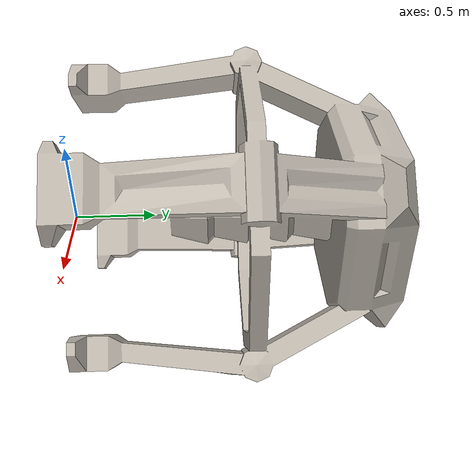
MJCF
<mujoco model="drill_structure">
  <default>
    <default class="visual">
      <geom group="2" type="mesh" contype="0" conaffinity="0" />
    </default>
    <default class="collision">
      <geom group="3" type="mesh" />
    </default>
  </default>
  <asset>
    <texture type="2d" name="drill_structure_spacebits_texture" file="spacebits_texture.png" />
    <material name="drill_structure_spacebits_texture" texture="drill_structure_spacebits_texture" specular="0.50196078" shininess="0.15999998099999999" />
    <mesh file="drill_structure.obj" name="drill_structure_drill_structure" />
  </asset>
  <worldbody>
    <body name="drill_structure">
      <geom material="drill_structure_spacebits_texture" mesh="drill_structure_drill_structure" class="visual" />
      <geom mesh="drill_structure_drill_structure" class="collision" />
    </body>
  </worldbody>
</mujoco>
